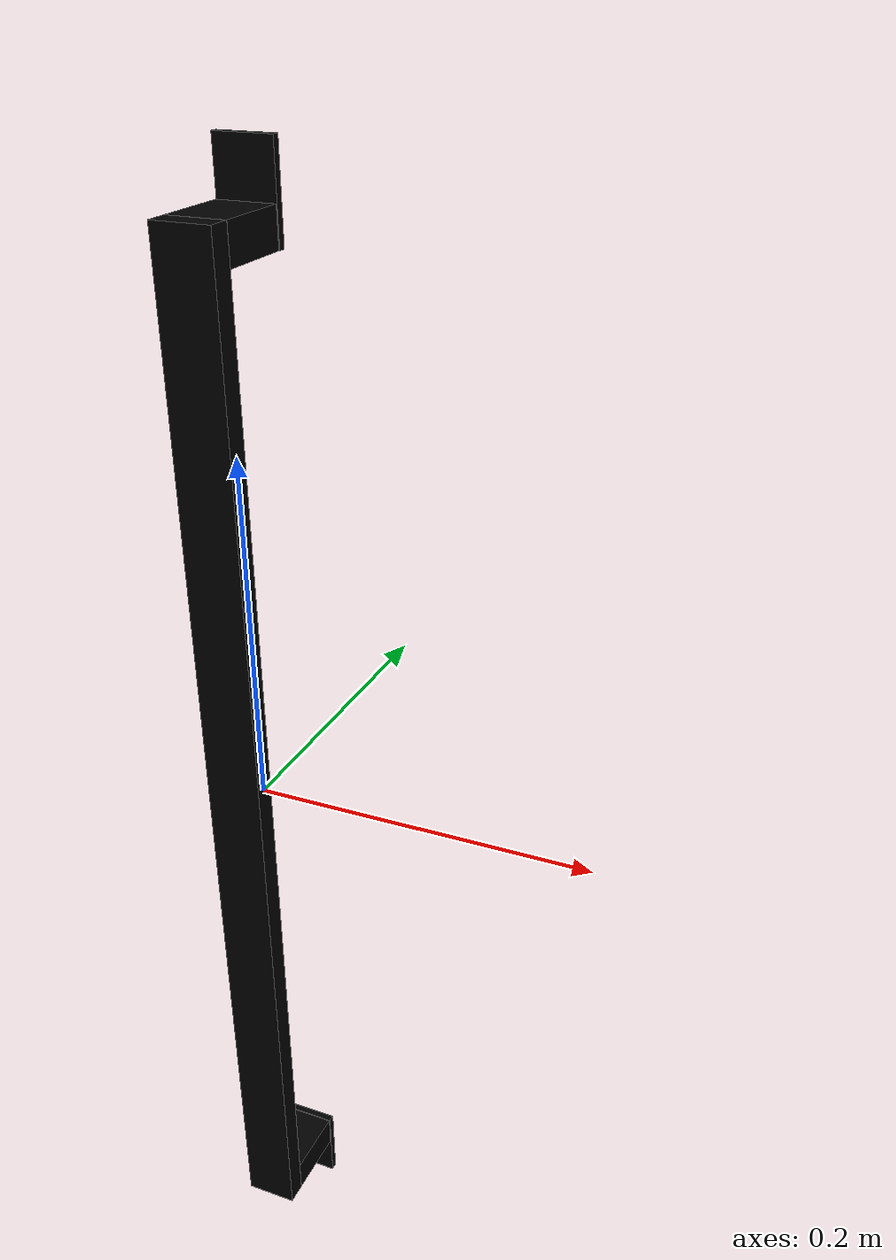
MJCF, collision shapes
<?xml version="1.0" ?>
<mujoco model="model">
    <compiler angle="radian"/>
    <asset>
        <mesh file="visuals/CabinetHandle050.obj" name="mesh"/>
        <texture file="visuals/T_BC001.png" name="tex" type="2d"/>
        <material name="mat" rgba="1 1 1 1.0" texture="tex" shininess="0.4472135901451111" specular="0.3103448502657381"/>
    </asset>
    <default>
        <default class="visual">
            <geom conaffinity="0" contype="0" group="1" type="mesh"/>
        </default>
        <default class="collision">
            <geom group="0" rgba="0 0 0 0"/>
        </default>
        <default class="spawn">
            <geom group="0" rgba="0 0 0 0" contype="0" conaffinity="0"/>
            <site group="0" rgba="0 0 0 0"/>
        </default>
    </default>
    <worldbody>
        <body>
            <body name="object">
                <geom mesh="mesh" type="mesh" solimp="0.998 0.998 0.001" solref="0.001 1" density="100" friction="0.95 0.3 0.1" class="visual" material="mat"/>
                <geom class="collision" type="box" pos="-0.00027094068354927003 -0.024711977690458298 -8.977413381217048e-05" size="0.016219280660152435 0.006619834806770086 0.31597331166267395" quat="1.0 0.0 0.0 0.0"/>
                <geom class="collision" type="box" pos="-0.00027094068354927003 0.004204127937555313 0.30543968081474304" size="0.016219280660152435 0.022256607189774513 0.010443865321576595" quat="1.0 0.0 0.0 0.0"/>
                <geom class="collision" type="box" pos="-7.741441368125379e-05 0.028946205973625183 0.3202008605003357" size="0.016412807628512383 0.002276744693517685 0.02520504593849182" quat="1.0 0.0 0.0 0.0" name="handle_connector"/>
                <geom class="collision" type="box" pos="-7.741441368125379e-05 0.028946205973625183 -0.32024702429771423" size="0.016412807628512383 0.002276744693517685 0.02520504593849182" quat="1.0 0.0 0.0 0.0"/>
                <geom class="collision" type="box" pos="-0.00027094068354927003 0.004204127937555313 -0.3054858446121216" size="0.016219280660152435 0.022256607189774513 0.010443865321576595" quat="1.0 0.0 0.0 0.0"/>
            </body>
        </body>
    </worldbody>
    <actuator/>
</mujoco>
